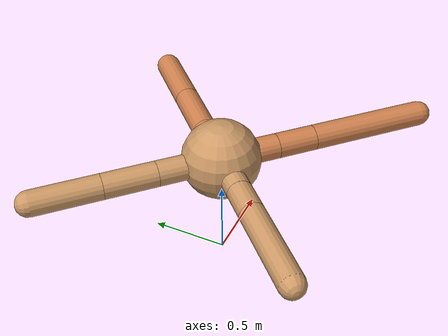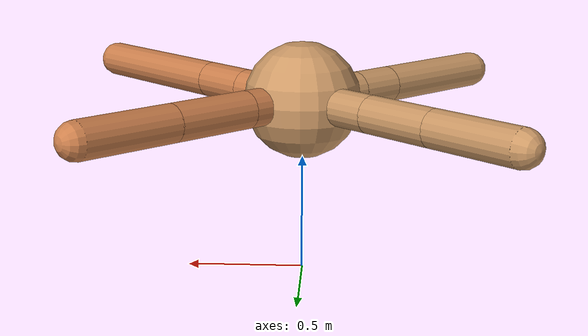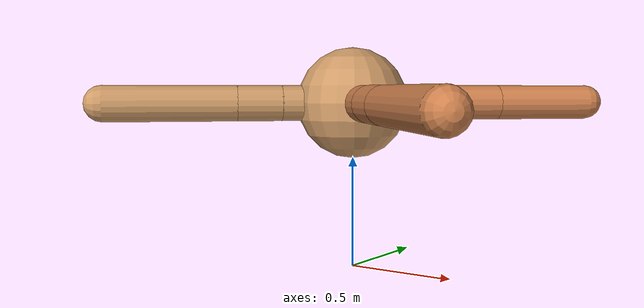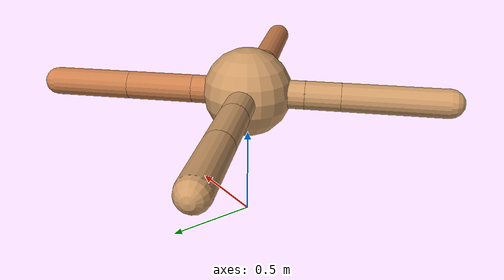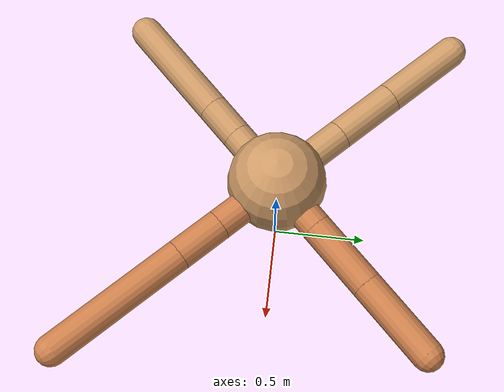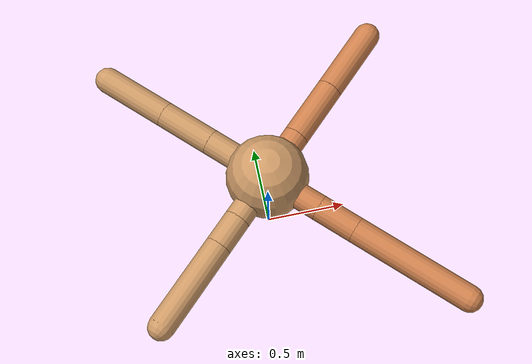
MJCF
<mujoco model="ant">
  <compiler angle="degree" coordinate="local" inertiafromgeom="true" />
  <option integrator="RK4" timestep="0.01" />
  <custom>
    <numeric data="0.0 0.0 0.55 1.0 0.0 0.0 0.0 0.0 1.0 0.0 -1.0 0.0 -1.0 0.0 1.0" name="init_qpos" />
  </custom>
  <default>
    <joint armature="1" damping="1" limited="true" />
    <geom conaffinity="0" condim="3" density="5.0" friction="1.5 0.1 0.1" margin="0.01" rgba="0.8 0.6 0.4 1" />
  </default>
  <worldbody>
    <body name="torso" pos="0 0 0.75">
      <geom name="torso_geom" pos="0 0 0" size="0.25" type="sphere" />

      <body name="front_left_leg" pos="0 0 0">
        <geom fromto="0.0 0.0 0.0 0.22171542201042505 0.22171542201042505 0.0" name="aux_1_geom" size="0.08" type="capsule" rgba=".8 .5 .3 1" />
        <body name="aux_1" pos="0.22171542201042505 0.22171542201042505 0.0">
          <joint axis="0 0 1" name="hip_1" pos="0.0 0.0 0.0" range="-40 40" type="hinge" />
          <geom fromto="0.0 0.0 0.0 0.26710484898946374 0.26710484898946374 0.0" name="left_leg_geom" size="0.08" type="capsule" rgba=".8 .5 .3 1" />
          <body pos="0.26710484898946374 0.26710484898946374 0.0" name="front_left_foot">
            <joint axis="-1 1 0" name="ankle_1" pos="0.0 0.0 0.0" range="30 100" type="hinge" />
            <geom fromto="0.0 0.0 0.0 0.31382402461216397 0.31382402461216397 0.0" name="left_ankle_geom" size="0.08" type="capsule" rgba=".8 .5 .3 1" />
          </body>
        </body>
      </body>
      <body name="front_right_leg" pos="0 0 0">
        <geom fromto="0.0 0.0 0.0 -0.2893258469364782 0.2893258469364782 0.0" name="aux_2_geom" size="0.08" type="capsule" />
        <body name="aux_2" pos="-0.2893258469364782 0.2893258469364782 0.0">
          <joint axis="0 0 1" name="hip_2" pos="0.0 0.0 0.0" range="-40 40" type="hinge" />
          <geom fromto="0.0 0.0 0.0 -0.23736134309611986 0.23736134309611986 0.0" name="right_leg_geom" size="0.08" type="capsule" />
          <body pos="-0.23736134309611986 0.23736134309611986 0.0" name="front_right_foot">
            <joint axis="1 1 0" name="ankle_2" pos="0.0 0.0 0.0" range="-100 -30" type="hinge" />
            <geom fromto="0.0 0.0 0.0 -0.3027799943759202 0.3027799943759202 0.0" name="right_ankle_geom" size="0.08" type="capsule" />
          </body>
        </body>
      </body>
      <body name="left_back_leg" pos="0 0 0">
        <geom fromto="0.0 0.0 0.0 -0.2278702989824801 -0.2278702989824801 0.0" name="aux_3_geom" size="0.08" type="capsule" />
        <body name="aux_3" pos="-0.2278702989824801 -0.2278702989824801 0.0">
          <joint axis="0 0 1" name="hip_3" pos="0.0 0.0 0.0" range="-40 40" type="hinge" />
          <geom fromto="0.0 0.0 0.0 -0.1396552112426868 -0.1396552112426868 0.0" name="back_leg_geom" size="0.08" type="capsule" />
          <body pos="-0.1396552112426868 -0.1396552112426868 0.0" name="left_back_foot">
            <joint axis="-1 1 0" name="ankle_3" pos="0.0 0.0 0.0" range="-100 -30" type="hinge" />
            <geom fromto="0.0 0.0 0.0 -0.4032555979499806 -0.4032555979499806 0.0" name="third_ankle_geom" size="0.08" type="capsule" />
          </body>
        </body>
      </body>
      <body name="right_back_leg" pos="0 0 0">
        <geom fromto="0.0 0.0 0.0 0.2602810356248392 -0.2602810356248392 0.0" name="aux_4_geom" size="0.08" type="capsule" rgba=".8 .5 .3 1" />
        <body name="aux_4" pos="0.2602810356248392 -0.2602810356248392 0.0">
          <joint axis="0 0 1" name="hip_4" pos="0.0 0.0 0.0" range="-40 40" type="hinge" />
          <geom fromto="0.0 0.0 0.0 0.17656192833794987 -0.17656192833794987 0.0" name="rightback_leg_geom" size="0.08" type="capsule" rgba=".8 .5 .3 1" />
          <body pos="0.17656192833794987 -0.17656192833794987 0.0" name="right_back_foot">
            <joint axis="1 1 0" name="ankle_4" pos="0.0 0.0 0.0" range="30 100" type="hinge" />
            <geom fromto="0.0 0.0 0.0 0.5358958081123782 -0.5358958081123782 0.0" name="fourth_ankle_geom" size="0.08" type="capsule" rgba=".8 .5 .3 1" />
          </body>
        </body>
      </body>
    </body>
  </worldbody>
  <actuator>
    <motor ctrllimited="true" ctrlrange="-1.0 1.0" joint="hip_4" gear="150" />
    <motor ctrllimited="true" ctrlrange="-1.0 1.0" joint="ankle_4" gear="150" />
    <motor ctrllimited="true" ctrlrange="-1.0 1.0" joint="hip_1" gear="150" />
    <motor ctrllimited="true" ctrlrange="-1.0 1.0" joint="ankle_1" gear="150" />
    <motor ctrllimited="true" ctrlrange="-1.0 1.0" joint="hip_2" gear="150" />
    <motor ctrllimited="true" ctrlrange="-1.0 1.0" joint="ankle_2" gear="150" />
    <motor ctrllimited="true" ctrlrange="-1.0 1.0" joint="hip_3" gear="150" />
    <motor ctrllimited="true" ctrlrange="-1.0 1.0" joint="ankle_3" gear="150" />
  </actuator>
</mujoco>
